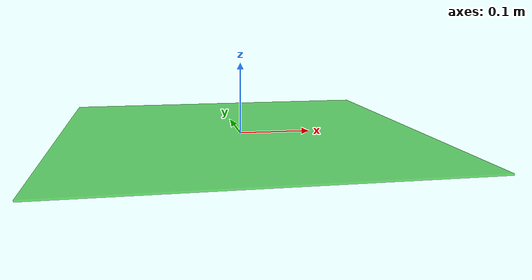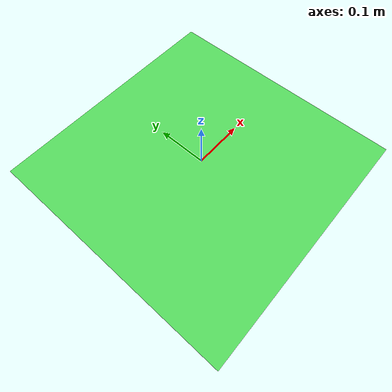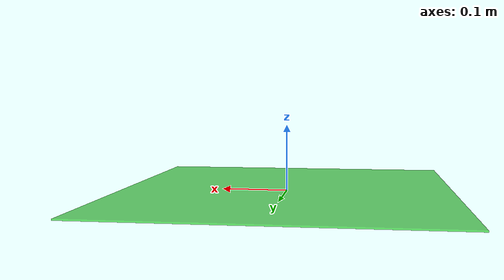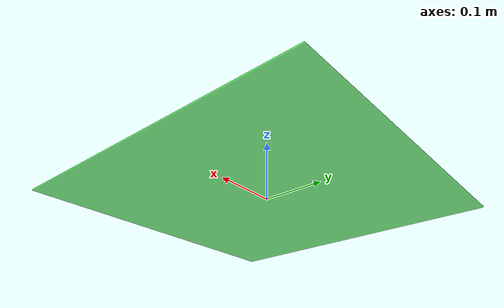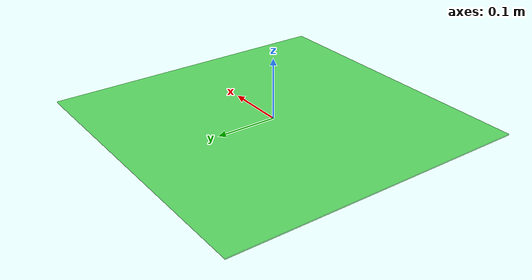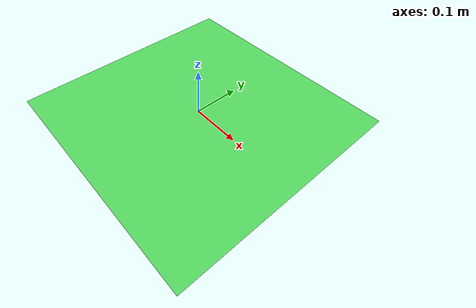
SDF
<?xml version="1.0" ?>
<sdf version="1.6">
  <model name="landing_pad">
    <static>true</static>
    <pose>0 0 0.001 0 0 0</pose>

    <!-- Publish ground-truth pose on /model/landing_pad/pose so the
         vision autopilot can find the pad via TF. static_publisher is
         required because this model is static and never moves. -->
    <plugin filename="ignition-gazebo-pose-publisher-system"
            name="ignition::gazebo::systems::PosePublisher">
      <publish_link_pose>false</publish_link_pose>
      <publish_nested_model_pose>false</publish_nested_model_pose>
      <publish_model_pose>true</publish_model_pose>
      <use_pose_vector_msg>true</use_pose_vector_msg>
      <update_rate>5</update_rate>
      <static_publisher>true</static_publisher>
      <static_update_frequency>5</static_update_frequency>
    </plugin>

    <link name="base_link">
      <collision name="collision">
        <geometry>
          <box>
            <size>0.5 0.5 0.002</size>
          </box>
        </geometry>
        <surface>
          <friction>
            <ode>
              <mu>1.0</mu>
              <mu2>1.0</mu2>
            </ode>
          </friction>
        </surface>
      </collision>
      <visual name="visual">
        <geometry>
          <box>
            <size>0.5 0.5 0.002</size>
          </box>
        </geometry>
        <material>
          <ambient>0.0 0.8 0.0 1.0</ambient>
          <diffuse>0.0 0.8 0.0 0.6</diffuse>
        </material>
      </visual>
    </link>
  </model>
</sdf>
